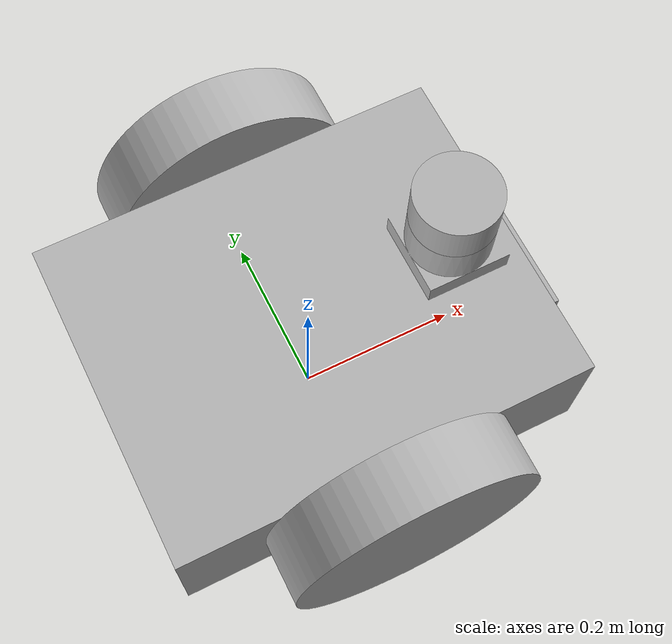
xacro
<?xml version="1.0" ?>
<robot name="moodz" xmlns:xacro="http://www.ros.org/wiki/xacro">

<xacro:include filename="$(find moodz_description)/urdf/materials.xacro" />
<xacro:include filename="$(find moodz_description)/urdf/moodz.trans" />
<xacro:include filename="$(find moodz_description)/urdf/moodz.gazebo" />
<link name="base_link">
  <inertial>
    <origin rpy="0 0 0" xyz="0.003563875604623609 3.688815650635801e-17 0.14918957693465243"/>
    <mass value="33.45253675533549"/>
    <inertia ixx="0.504373" ixy="0.0" ixz="-0.01326" iyy="0.793057" iyz="0.0" izz="1.138721"/>
  </inertial>
  <visual>
    <origin rpy="0 0 0" xyz="0 0 0"/>
    <geometry>
      <mesh filename="package://moodz_description/meshes/base_link.stl" scale="0.001 0.001 0.001"/>
    </geometry>
    <material name="silver"/>
  </visual>
  <collision>
    <origin rpy="0 0 0" xyz="0 0 0"/>
    <geometry>
      <mesh filename="package://moodz_description/meshes/base_link.stl" scale="0.001 0.001 0.001"/>
    </geometry>
  </collision>
</link>

<link name="right_wheel_1">
  <inertial>
    <origin rpy="0 0 0" xyz="0.0 -0.03750000000000003 2.7755575615628914e-17"/>
    <mass value="4.93033697072748"/>
    <inertia ixx="0.030044" ixy="0.0" ixz="-0.0" iyy="0.055466" iyz="-0.0" izz="0.030044"/>
  </inertial>
  <visual>
    <origin rpy="0 0 0" xyz="-0.0 0.2 -0.15"/>
    <geometry>
      <mesh filename="package://moodz_description/meshes/right_wheel_1.stl" scale="0.001 0.001 0.001"/>
    </geometry>
    <material name="silver"/>
  </visual>
  <collision>
    <origin rpy="0 0 0" xyz="-0.0 0.2 -0.15"/>
    <geometry>
      <mesh filename="package://moodz_description/meshes/right_wheel_1.stl" scale="0.001 0.001 0.001"/>
    </geometry>
  </collision>
</link>

<link name="left_wheel_1">
  <inertial>
    <origin rpy="0 0 0" xyz="0.0 0.03749999999999998 2.7755575615628914e-17"/>
    <mass value="4.93033697072748"/>
    <inertia ixx="0.030044" ixy="0.0" ixz="-0.0" iyy="0.055466" iyz="0.0" izz="0.030044"/>
  </inertial>
  <visual>
    <origin rpy="0 0 0" xyz="-0.0 -0.2 -0.15"/>
    <geometry>
      <mesh filename="package://moodz_description/meshes/left_wheel_1.stl" scale="0.001 0.001 0.001"/>
    </geometry>
    <material name="silver"/>
  </visual>
  <collision>
    <origin rpy="0 0 0" xyz="-0.0 -0.2 -0.15"/>
    <geometry>
      <mesh filename="package://moodz_description/meshes/left_wheel_1.stl" scale="0.001 0.001 0.001"/>
    </geometry>
  </collision>
</link>

<link name="lidar_1">
  <inertial>
    <origin rpy="0 0 0" xyz="-2.7755575615628914e-17 5.790023100122029e-18 0.024999999999999967"/>
    <mass value="0.5615596868291755"/>
    <inertia ixx="0.000468" ixy="0.0" ixz="-0.0" iyy="0.000468" iyz="0.0" izz="0.000702"/>
  </inertial>
  <visual>
    <origin rpy="0 0 0" xyz="-0.175 -0.0 -0.3"/>
    <geometry>
      <mesh filename="package://moodz_description/meshes/lidar_1.stl" scale="0.001 0.001 0.001"/>
    </geometry>
    <material name="silver"/>
  </visual>
  <collision>
    <origin rpy="0 0 0" xyz="-0.175 -0.0 -0.3"/>
    <geometry>
      <mesh filename="package://moodz_description/meshes/lidar_1.stl" scale="0.001 0.001 0.001"/>
    </geometry>
  </collision>
</link>

<link name="camera_1">
  <inertial>
    <origin rpy="0 0 0" xyz="0.012500000000000011 0.0 0.0"/>
    <mass value="0.3575"/>
    <inertia ixx="0.001266" ixy="0.0" ixz="0.0" iyy="9.3e-05" iyz="0.0" izz="0.00121"/>
  </inertial>
  <visual>
    <origin rpy="0 0 0" xyz="-0.25 -0.0 -0.15"/>
    <geometry>
      <mesh filename="package://moodz_description/meshes/camera_1.stl" scale="0.001 0.001 0.001"/>
    </geometry>
    <material name="silver"/>
  </visual>
  <collision>
    <origin rpy="0 0 0" xyz="-0.25 -0.0 -0.15"/>
    <geometry>
      <mesh filename="package://moodz_description/meshes/camera_1.stl" scale="0.001 0.001 0.001"/>
    </geometry>
  </collision>
</link>

<joint name="Rev1" type="continuous">
  <origin rpy="0 0 0" xyz="0.0 -0.2 0.15"/>
  <parent link="base_link"/>
  <child link="right_wheel_1"/>
  <axis xyz="0.0 -1.0 0.0"/>
</joint>

<joint name="Rev2" type="continuous">
  <origin rpy="0 0 0" xyz="0.0 0.2 0.15"/>
  <parent link="base_link"/>
  <child link="left_wheel_1"/>
  <axis xyz="0.0 1.0 0.0"/>
</joint>

<joint name="Rev3" type="continuous">
  <origin rpy="0 0 0" xyz="0.175 0.0 0.3"/>
  <parent link="base_link"/>
  <child link="lidar_1"/>
  <axis xyz="0.0 0.0 1.0"/>
</joint>

<joint name="Rigid4" type="fixed">
  <origin rpy="0 0 0" xyz="0.25 0.0 0.15"/>
  <parent link="base_link"/>
  <child link="camera_1"/>
</joint>

</robot>

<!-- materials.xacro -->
<robot name="moodz" xmlns:xacro="http://www.ros.org/wiki/xacro" >

<material name="silver">
  <color rgba="0.700 0.700 0.700 1.000"/>
</material>

</robot>

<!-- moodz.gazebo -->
<robot name="moodz" xmlns:xacro="http://www.ros.org/wiki/xacro" >

<xacro:property name="body_color" value="Gazebo/Silver" />

<gazebo>
  <plugin filename="libgazebo_ros_control.so" name="control"/>
</gazebo>
<gazebo reference="base_link">
  <material>${body_color}</material>
  <mu1>0.2</mu1>
  <mu2>0.2</mu2>
  <selfCollide>true</selfCollide>
  <gravity>true</gravity>
</gazebo>

<gazebo reference="right_wheel_1">
  <material>${body_color}</material>
  <mu1>0.2</mu1>
  <mu2>0.2</mu2>
  <selfCollide>true</selfCollide>
</gazebo>

<gazebo reference="left_wheel_1">
  <material>${body_color}</material>
  <mu1>0.2</mu1>
  <mu2>0.2</mu2>
  <selfCollide>true</selfCollide>
</gazebo>

<gazebo reference="lidar_1">
  <material>${body_color}</material>
  <mu1>0.2</mu1>
  <mu2>0.2</mu2>
  <selfCollide>true</selfCollide>
</gazebo>

<gazebo reference="camera_1">
  <material>${body_color}</material>
  <mu1>0.2</mu1>
  <mu2>0.2</mu2>
  <selfCollide>true</selfCollide>
</gazebo>

</robot>
